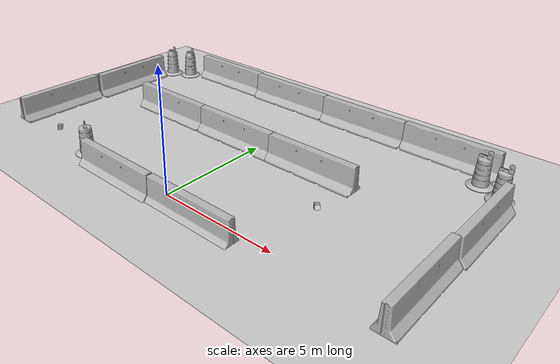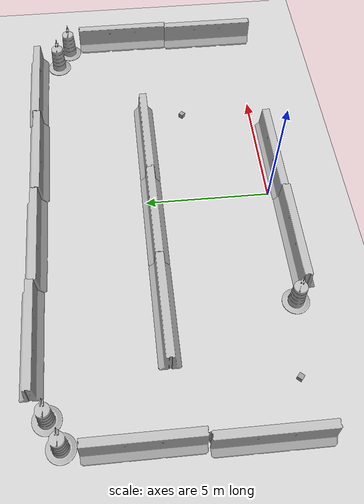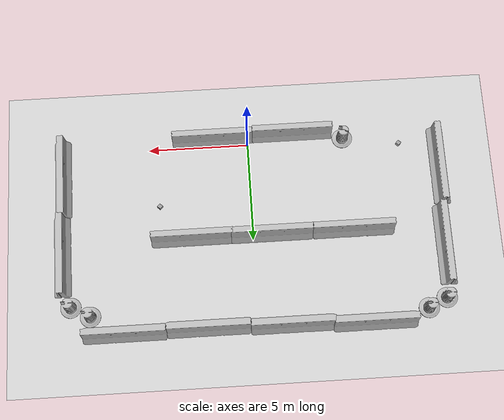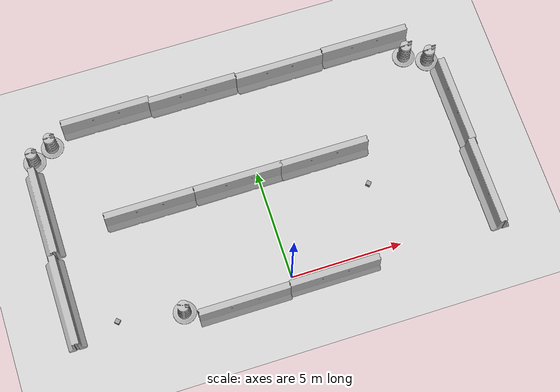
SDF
<sdf version="1.7">
 <world name="default">
  <model name="ground_plane">
   <static>1</static>
   <link name="link">
    <collision name="collision">
     <geometry><plane><normal>0 0 1</normal><size>100 100</size></plane></geometry>
     <surface><friction><ode><mu>100</mu><mu2>50</mu2></ode></friction></surface>
    </collision>
    <visual name="visual">
     <cast_shadows>0</cast_shadows>
     <geometry><plane><normal>0 0 1</normal><size>100 100</size></plane></geometry>
     <material>
      <script><uri>file://media/materials/scripts/gazebo.material</uri><name>Gazebo/Grey</name></script>
     </material>
    </visual>
   </link>
  </model>
  <model name="jersey_barrier">
   <static>1</static>
   <link name="link">
    <visual name="visual">
     <geometry><mesh><uri>model://jersey_barrier/meshes/jersey_barrier.dae</uri></mesh></geometry>
    </visual>
    <collision name="upright">
     <pose>0 0 0.5715 0 -0 0</pose>
     <geometry><box><size>4.06542 0.3063 1.143</size></box></geometry>
    </collision>
    <collision name="base">
     <pose>0 0 0.032258 0 -0 0</pose>
     <geometry><box><size>4.06542 0.8107 0.064516</size></box></geometry>
    </collision>
    <collision name="base2">
     <pose>0 0 0.1 0 -0 0</pose>
     <geometry><box><size>4.06542 0.65 0.1</size></box></geometry>
    </collision>
    <collision name="base3">
     <pose>0 0 0.2 0 -0 0</pose>
     <geometry><box><size>4.06542 0.5 0.1</size></box></geometry>
    </collision>
    <collision name="left-angle">
     <pose>0 -0.224 0.2401 0.9 -0 0</pose>
     <geometry><box><size>4.06542 0.5 0.064516</size></box></geometry>
    </collision>
    <collision name="right-angle">
     <pose>0 0.224 0.2401 -0.9 0 0</pose>
     <geometry><box><size>4.06542 0.5 0.064516</size></box></geometry>
    </collision>
   </link>
   <pose>-5.65677 9.4608 0 0 -0 0</pose>
  </model>
  <model name="jersey_barrier_clone">
   <static>1</static>
   <link name="link">
    <visual name="visual">
     <geometry><mesh><uri>model://jersey_barrier/meshes/jersey_barrier.dae</uri></mesh></geometry>
    </visual>
    <collision name="upright">
     <pose>0 0 0.5715 0 -0 0</pose>
     <geometry><box><size>4.06542 0.3063 1.143</size></box></geometry>
    </collision>
    <collision name="base">
     <pose>0 0 0.032258 0 -0 0</pose>
     <geometry><box><size>4.06542 0.8107 0.064516</size></box></geometry>
    </collision>
    <collision name="base2">
     <pose>0 0 0.1 0 -0 0</pose>
     <geometry><box><size>4.06542 0.65 0.1</size></box></geometry>
    </collision>
    <collision name="base3">
     <pose>0 0 0.2 0 -0 0</pose>
     <geometry><box><size>4.06542 0.5 0.1</size></box></geometry>
    </collision>
    <collision name="left-angle">
     <pose>0 -0.224 0.2401 0.9 -0 0</pose>
     <geometry><box><size>4.06542 0.5 0.064516</size></box></geometry>
    </collision>
    <collision name="right-angle">
     <pose>0 0.224 0.2401 -0.9 0 0</pose>
     <geometry><box><size>4.06542 0.5 0.064516</size></box></geometry>
    </collision>
   </link>
   <pose>-1.65987 9.36075 0 0 -0 0</pose>
  </model>
  <model name="jersey_barrier_clone_0">
   <static>1</static>
   <link name="link">
    <visual name="visual">
     <geometry><mesh><uri>model://jersey_barrier/meshes/jersey_barrier.dae</uri></mesh></geometry>
    </visual>
    <collision name="upright">
     <pose>0 0 0.5715 0 -0 0</pose>
     <geometry><box><size>4.06542 0.3063 1.143</size></box></geometry>
    </collision>
    <collision name="base">
     <pose>0 0 0.032258 0 -0 0</pose>
     <geometry><box><size>4.06542 0.8107 0.064516</size></box></geometry>
    </collision>
    <collision name="base2">
     <pose>0 0 0.1 0 -0 0</pose>
     <geometry><box><size>4.06542 0.65 0.1</size></box></geometry>
    </collision>
    <collision name="base3">
     <pose>0 0 0.2 0 -0 0</pose>
     <geometry><box><size>4.06542 0.5 0.1</size></box></geometry>
    </collision>
    <collision name="left-angle">
     <pose>0 -0.224 0.2401 0.9 -0 0</pose>
     <geometry><box><size>4.06542 0.5 0.064516</size></box></geometry>
    </collision>
    <collision name="right-angle">
     <pose>0 0.224 0.2401 -0.9 0 0</pose>
     <geometry><box><size>4.06542 0.5 0.064516</size></box></geometry>
    </collision>
   </link>
   <pose>2.39773 9.29085 0 0 -0 0</pose>
  </model>
  <model name="jersey_barrier_clone_1">
   <static>1</static>
   <link name="link">
    <visual name="visual">
     <geometry><mesh><uri>model://jersey_barrier/meshes/jersey_barrier.dae</uri></mesh></geometry>
    </visual>
    <collision name="upright">
     <pose>0 0 0.5715 0 -0 0</pose>
     <geometry><box><size>4.06542 0.3063 1.143</size></box></geometry>
    </collision>
    <collision name="base">
     <pose>0 0 0.032258 0 -0 0</pose>
     <geometry><box><size>4.06542 0.8107 0.064516</size></box></geometry>
    </collision>
    <collision name="base2">
     <pose>0 0 0.1 0 -0 0</pose>
     <geometry><box><size>4.06542 0.65 0.1</size></box></geometry>
    </collision>
    <collision name="base3">
     <pose>0 0 0.2 0 -0 0</pose>
     <geometry><box><size>4.06542 0.5 0.1</size></box></geometry>
    </collision>
    <collision name="left-angle">
     <pose>0 -0.224 0.2401 0.9 -0 0</pose>
     <geometry><box><size>4.06542 0.5 0.064516</size></box></geometry>
    </collision>
    <collision name="right-angle">
     <pose>0 0.224 0.2401 -0.9 0 0</pose>
     <geometry><box><size>4.06542 0.5 0.064516</size></box></geometry>
    </collision>
   </link>
   <pose>6.45464 9.33993 0 0 -0 0</pose>
  </model>
  <model name="jersey_barrier_clone_3">
   <static>1</static>
   <link name="link">
    <visual name="visual">
     <geometry><mesh><uri>model://jersey_barrier/meshes/jersey_barrier.dae</uri></mesh></geometry>
    </visual>
    <collision name="upright">
     <pose>0 0 0.5715 0 -0 0</pose>
     <geometry><box><size>4.06542 0.3063 1.143</size></box></geometry>
    </collision>
    <collision name="base">
     <pose>0 0 0.032258 0 -0 0</pose>
     <geometry><box><size>4.06542 0.8107 0.064516</size></box></geometry>
    </collision>
    <collision name="base2">
     <pose>0 0 0.1 0 -0 0</pose>
     <geometry><box><size>4.06542 0.65 0.1</size></box></geometry>
    </collision>
    <collision name="base3">
     <pose>0 0 0.2 0 -0 0</pose>
     <geometry><box><size>4.06542 0.5 0.1</size></box></geometry>
    </collision>
    <collision name="left-angle">
     <pose>0 -0.224 0.2401 0.9 -0 0</pose>
     <geometry><box><size>4.06542 0.5 0.064516</size></box></geometry>
    </collision>
    <collision name="right-angle">
     <pose>0 0.224 0.2401 -0.9 0 0</pose>
     <geometry><box><size>4.06542 0.5 0.064516</size></box></geometry>
    </collision>
   </link>
   <pose>9.44656 5.35522 0 0 0 -1.56865</pose>
  </model>
  <model name="jersey_barrier_clone_3_clone">
   <static>1</static>
   <link name="link">
    <visual name="visual">
     <geometry><mesh><uri>model://jersey_barrier/meshes/jersey_barrier.dae</uri></mesh></geometry>
    </visual>
    <collision name="upright">
     <pose>0 0 0.5715 0 -0 0</pose>
     <geometry><box><size>4.06542 0.3063 1.143</size></box></geometry>
    </collision>
    <collision name="base">
     <pose>0 0 0.032258 0 -0 0</pose>
     <geometry><box><size>4.06542 0.8107 0.064516</size></box></geometry>
    </collision>
    <collision name="base2">
     <pose>0 0 0.1 0 -0 0</pose>
     <geometry><box><size>4.06542 0.65 0.1</size></box></geometry>
    </collision>
    <collision name="base3">
     <pose>0 0 0.2 0 -0 0</pose>
     <geometry><box><size>4.06542 0.5 0.1</size></box></geometry>
    </collision>
    <collision name="left-angle">
     <pose>0 -0.224 0.2401 0.9 -0 0</pose>
     <geometry><box><size>4.06542 0.5 0.064516</size></box></geometry>
    </collision>
    <collision name="right-angle">
     <pose>0 0.224 0.2401 -0.9 0 0</pose>
     <geometry><box><size>4.06542 0.5 0.064516</size></box></geometry>
    </collision>
   </link>
   <pose>9.3727 1.33119 0 0 0 -1.56865</pose>
  </model>
  <model name="jersey_barrier_clone_3_clone_1_clone_1">
   <static>1</static>
   <link name="link">
    <visual name="visual">
     <geometry><mesh><uri>model://jersey_barrier/meshes/jersey_barrier.dae</uri></mesh></geometry>
    </visual>
    <collision name="upright">
     <pose>0 0 0.5715 0 -0 0</pose>
     <geometry><box><size>4.06542 0.3063 1.143</size></box></geometry>
    </collision>
    <collision name="base">
     <pose>0 0 0.032258 0 -0 0</pose>
     <geometry><box><size>4.06542 0.8107 0.064516</size></box></geometry>
    </collision>
    <collision name="base2">
     <pose>0 0 0.1 0 -0 0</pose>
     <geometry><box><size>4.06542 0.65 0.1</size></box></geometry>
    </collision>
    <collision name="base3">
     <pose>0 0 0.2 0 -0 0</pose>
     <geometry><box><size>4.06542 0.5 0.1</size></box></geometry>
    </collision>
    <collision name="left-angle">
     <pose>0 -0.224 0.2401 0.9 -0 0</pose>
     <geometry><box><size>4.06542 0.5 0.064516</size></box></geometry>
    </collision>
    <collision name="right-angle">
     <pose>0 0.224 0.2401 -0.9 0 0</pose>
     <geometry><box><size>4.06542 0.5 0.064516</size></box></geometry>
    </collision>
   </link>
   <pose>-9.58952 1.69745 0 0 0 -1.56865</pose>
  </model>
  <model name="jersey_barrier_clone_3_clone_1_clone_2">
   <static>1</static>
   <link name="link">
    <visual name="visual">
     <geometry><mesh><uri>model://jersey_barrier/meshes/jersey_barrier.dae</uri></mesh></geometry>
    </visual>
    <collision name="upright">
     <pose>0 0 0.5715 0 -0 0</pose>
     <geometry><box><size>4.06542 0.3063 1.143</size></box></geometry>
    </collision>
    <collision name="base">
     <pose>0 0 0.032258 0 -0 0</pose>
     <geometry><box><size>4.06542 0.8107 0.064516</size></box></geometry>
    </collision>
    <collision name="base2">
     <pose>0 0 0.1 0 -0 0</pose>
     <geometry><box><size>4.06542 0.65 0.1</size></box></geometry>
    </collision>
    <collision name="base3">
     <pose>0 0 0.2 0 -0 0</pose>
     <geometry><box><size>4.06542 0.5 0.1</size></box></geometry>
    </collision>
    <collision name="left-angle">
     <pose>0 -0.224 0.2401 0.9 -0 0</pose>
     <geometry><box><size>4.06542 0.5 0.064516</size></box></geometry>
    </collision>
    <collision name="right-angle">
     <pose>0 0.224 0.2401 -0.9 0 0</pose>
     <geometry><box><size>4.06542 0.5 0.064516</size></box></geometry>
    </collision>
   </link>
   <pose>-9.44715 5.83721 0 0 0 -1.56865</pose>
  </model>
  <model name="Construction Barrel">
   <link name="link">
    <inertial>
     <pose>0 0 0.4 0 -0 0</pose>
     <mass>500</mass>
     <inertia><ixx>51.2096</ixx><iyy>51.2096</iyy><izz>25</izz><ixy>0</ixy><ixz>0</ixz><iyz>0</iyz></inertia>
    </inertial>
    <collision name="collision">
     <geometry><mesh><uri>model://construction_barrel/meshes/construction_barrel.dae</uri></mesh></geometry>
    </collision>
    <visual name="visual">
     <geometry><mesh><uri>model://construction_barrel/meshes/construction_barrel.dae</uri></mesh></geometry>
    </visual>
   </link>
   <pose>9.07434 7.91049 -2e-06 4e-06 9e-06 -0.000113</pose>
  </model>
  <model name="Construction Barrel_0">
   <link name="link">
    <inertial>
     <pose>0 0 0.4 0 -0 0</pose>
     <mass>500</mass>
     <inertia><ixx>51.2096</ixx><iyy>51.2096</iyy><izz>25</izz><ixy>0</ixy><ixz>0</ixz><iyz>0</iyz></inertia>
    </inertial>
    <collision name="collision">
     <geometry><mesh><uri>model://construction_barrel/meshes/construction_barrel.dae</uri></mesh></geometry>
    </collision>
    <visual name="visual">
     <geometry><mesh><uri>model://construction_barrel/meshes/construction_barrel.dae</uri></mesh></geometry>
    </visual>
   </link>
   <pose>8.12819 8.41629 -2e-06 -7e-06 -4e-06 -9.7e-05</pose>
  </model>
  <model name="Construction Barrel_1">
   <link name="link">
    <inertial>
     <pose>0 0 0.4 0 -0 0</pose>
     <mass>500</mass>
     <inertia><ixx>51.2096</ixx><iyy>51.2096</iyy><izz>25</izz><ixy>0</ixy><ixz>0</ixz><iyz>0</iyz></inertia>
    </inertial>
    <collision name="collision">
     <geometry><mesh><uri>model://construction_barrel/meshes/construction_barrel.dae</uri></mesh></geometry>
    </collision>
    <visual name="visual">
     <geometry><mesh><uri>model://construction_barrel/meshes/construction_barrel.dae</uri></mesh></geometry>
    </visual>
   </link>
   <pose>-9.27273 8.48384 -2e-06 -7e-06 -4e-06 -9.6e-05</pose>
  </model>
  <model name="Construction Barrel_2">
   <link name="link">
    <inertial>
     <pose>0 0 0.4 0 -0 0</pose>
     <mass>500</mass>
     <inertia><ixx>51.2096</ixx><iyy>51.2096</iyy><izz>25</izz><ixy>0</ixy><ixz>0</ixz><iyz>0</iyz></inertia>
    </inertial>
    <collision name="collision">
     <geometry><mesh><uri>model://construction_barrel/meshes/construction_barrel.dae</uri></mesh></geometry>
    </collision>
    <visual name="visual">
     <geometry><mesh><uri>model://construction_barrel/meshes/construction_barrel.dae</uri></mesh></geometry>
    </visual>
   </link>
   <pose>-8.3437 8.93846 -1e-06 1e-06 -9e-06 -8.4e-05</pose>
  </model>
  <model name="jersey_barrier_0">
   <static>1</static>
   <link name="link">
    <visual name="visual">
     <geometry><mesh><uri>model://jersey_barrier/meshes/jersey_barrier.dae</uri></mesh></geometry>
    </visual>
    <collision name="upright">
     <pose>0 0 0.5715 0 -0 0</pose>
     <geometry><box><size>4.06542 0.3063 1.143</size></box></geometry>
    </collision>
    <collision name="base">
     <pose>0 0 0.032258 0 -0 0</pose>
     <geometry><box><size>4.06542 0.8107 0.064516</size></box></geometry>
    </collision>
    <collision name="base2">
     <pose>0 0 0.1 0 -0 0</pose>
     <geometry><box><size>4.06542 0.65 0.1</size></box></geometry>
    </collision>
    <collision name="base3">
     <pose>0 0 0.2 0 -0 0</pose>
     <geometry><box><size>4.06542 0.5 0.1</size></box></geometry>
    </collision>
    <collision name="left-angle">
     <pose>0 -0.224 0.2401 0.9 -0 0</pose>
     <geometry><box><size>4.06542 0.5 0.064516</size></box></geometry>
    </collision>
    <collision name="right-angle">
     <pose>0 0.224 0.2401 -0.9 0 0</pose>
     <geometry><box><size>4.06542 0.5 0.064516</size></box></geometry>
    </collision>
   </link>
   <pose>-4.97429 4.73074 0 0 -0 0</pose>
  </model>
  <model name="jersey_barrier_0_clone">
   <static>1</static>
   <link name="link">
    <visual name="visual">
     <geometry><mesh><uri>model://jersey_barrier/meshes/jersey_barrier.dae</uri></mesh></geometry>
    </visual>
    <collision name="upright">
     <pose>0 0 0.5715 0 -0 0</pose>
     <geometry><box><size>4.06542 0.3063 1.143</size></box></geometry>
    </collision>
    <collision name="base">
     <pose>0 0 0.032258 0 -0 0</pose>
     <geometry><box><size>4.06542 0.8107 0.064516</size></box></geometry>
    </collision>
    <collision name="base2">
     <pose>0 0 0.1 0 -0 0</pose>
     <geometry><box><size>4.06542 0.65 0.1</size></box></geometry>
    </collision>
    <collision name="base3">
     <pose>0 0 0.2 0 -0 0</pose>
     <geometry><box><size>4.06542 0.5 0.1</size></box></geometry>
    </collision>
    <collision name="left-angle">
     <pose>0 -0.224 0.2401 0.9 -0 0</pose>
     <geometry><box><size>4.06542 0.5 0.064516</size></box></geometry>
    </collision>
    <collision name="right-angle">
     <pose>0 0.224 0.2401 -0.9 0 0</pose>
     <geometry><box><size>4.06542 0.5 0.064516</size></box></geometry>
    </collision>
   </link>
   <pose>-0.93635 4.73131 0 0 -0 0</pose>
  </model>
  <model name="jersey_barrier_0_clone_0">
   <static>1</static>
   <link name="link">
    <visual name="visual">
     <geometry><mesh><uri>model://jersey_barrier/meshes/jersey_barrier.dae</uri></mesh></geometry>
    </visual>
    <collision name="upright">
     <pose>0 0 0.5715 0 -0 0</pose>
     <geometry><box><size>4.06542 0.3063 1.143</size></box></geometry>
    </collision>
    <collision name="base">
     <pose>0 0 0.032258 0 -0 0</pose>
     <geometry><box><size>4.06542 0.8107 0.064516</size></box></geometry>
    </collision>
    <collision name="base2">
     <pose>0 0 0.1 0 -0 0</pose>
     <geometry><box><size>4.06542 0.65 0.1</size></box></geometry>
    </collision>
    <collision name="base3">
     <pose>0 0 0.2 0 -0 0</pose>
     <geometry><box><size>4.06542 0.5 0.1</size></box></geometry>
    </collision>
    <collision name="left-angle">
     <pose>0 -0.224 0.2401 0.9 -0 0</pose>
     <geometry><box><size>4.06542 0.5 0.064516</size></box></geometry>
    </collision>
    <collision name="right-angle">
     <pose>0 0.224 0.2401 -0.9 0 0</pose>
     <geometry><box><size>4.06542 0.5 0.064516</size></box></geometry>
    </collision>
   </link>
   <pose>2.99134 4.7208 0 0 -0 0</pose>
  </model>
  <model name="jersey_barrier_0_clone_1">
   <static>1</static>
   <link name="link">
    <visual name="visual">
     <geometry><mesh><uri>model://jersey_barrier/meshes/jersey_barrier.dae</uri></mesh></geometry>
    </visual>
    <collision name="upright">
     <pose>0 0 0.5715 0 -0 0</pose>
     <geometry><box><size>4.06542 0.3063 1.143</size></box></geometry>
    </collision>
    <collision name="base">
     <pose>0 0 0.032258 0 -0 0</pose>
     <geometry><box><size>4.06542 0.8107 0.064516</size></box></geometry>
    </collision>
    <collision name="base2">
     <pose>0 0 0.1 0 -0 0</pose>
     <geometry><box><size>4.06542 0.65 0.1</size></box></geometry>
    </collision>
    <collision name="base3">
     <pose>0 0 0.2 0 -0 0</pose>
     <geometry><box><size>4.06542 0.5 0.1</size></box></geometry>
    </collision>
    <collision name="left-angle">
     <pose>0 -0.224 0.2401 0.9 -0 0</pose>
     <geometry><box><size>4.06542 0.5 0.064516</size></box></geometry>
    </collision>
    <collision name="right-angle">
     <pose>0 0.224 0.2401 -0.9 0 0</pose>
     <geometry><box><size>4.06542 0.5 0.064516</size></box></geometry>
    </collision>
   </link>
   <pose>-2.28888 -0.547269 -0.117848 0 -0 0</pose>
  </model>
  <model name="jersey_barrier_0_clone_1_clone">
   <static>1</static>
   <link name="link">
    <visual name="visual">
     <geometry><mesh><uri>model://jersey_barrier/meshes/jersey_barrier.dae</uri></mesh></geometry>
    </visual>
    <collision name="upright">
     <pose>0 0 0.5715 0 -0 0</pose>
     <geometry><box><size>4.06542 0.3063 1.143</size></box></geometry>
    </collision>
    <collision name="base">
     <pose>0 0 0.032258 0 -0 0</pose>
     <geometry><box><size>4.06542 0.8107 0.064516</size></box></geometry>
    </collision>
    <collision name="base2">
     <pose>0 0 0.1 0 -0 0</pose>
     <geometry><box><size>4.06542 0.65 0.1</size></box></geometry>
    </collision>
    <collision name="base3">
     <pose>0 0 0.2 0 -0 0</pose>
     <geometry><box><size>4.06542 0.5 0.1</size></box></geometry>
    </collision>
    <collision name="left-angle">
     <pose>0 -0.224 0.2401 0.9 -0 0</pose>
     <geometry><box><size>4.06542 0.5 0.064516</size></box></geometry>
    </collision>
    <collision name="right-angle">
     <pose>0 0.224 0.2401 -0.9 0 0</pose>
     <geometry><box><size>4.06542 0.5 0.064516</size></box></geometry>
    </collision>
   </link>
   <pose>1.76095 -0.499977 -0.161716 0 -0 0</pose>
  </model>
  <model name="Construction Barrel_6">
   <link name="link">
    <inertial>
     <pose>0 0 0.4 0 -0 0</pose>
     <mass>500</mass>
     <inertia><ixx>51.2096</ixx><iyy>51.2096</iyy><izz>25</izz><ixy>0</ixy><ixz>0</ixz><iyz>0</iyz></inertia>
    </inertial>
    <collision name="collision">
     <geometry><mesh><uri>model://construction_barrel/meshes/construction_barrel.dae</uri></mesh></geometry>
    </collision>
    <visual name="visual">
     <geometry><mesh><uri>model://construction_barrel/meshes/construction_barrel.dae</uri></mesh></geometry>
    </visual>
   </link>
   <pose>-4.84365 -0.104882 -0 0 0 -0.482812</pose>
  </model>
  <model name="marker11_box">
   <link name="marker">
    <inertial>
     <mass>0.1</mass>
     <inertia><ixx>0</ixx><ixy>0</ixy><ixz>0</ixz><iyy>0</iyy><iyz>0</iyz><izz>0</izz></inertia>
    </inertial>
    <self_collide>1</self_collide>
    <pose>-0.76428 -0.101106 0.120004 -0.015494 1.56996 -0.015507</pose>
    <visual name="visual">
     <geometry><box><size>0.2 0.2 0.001</size></box></geometry>
     <material>
      <script>
       <uri>model://marker11/material/scripts</uri>
       <uri>model://marker11/material/textures</uri>
       <name>Aruco/marker11</name>
      </script>
      <shader type="pixel"><normal_map>__default__</normal_map></shader>
      <emissive>0 0 0 1</emissive>
      <ambient>1 1 1 1</ambient>
      <diffuse>1 1 1 1</diffuse>
      <specular>0 0 0 1</specular>
     </material>
    </visual>
    <collision name="collision">
     <geometry><box><size>0.2 0.2 0.02</size></box></geometry>
     <surface>
      <friction>
       <ode><mu>1</mu><mu2>1</mu2><fdir1>0 0 0</fdir1><slip1>0</slip1><slip2>0</slip2></ode>
       <torsional>
        <coefficient>1</coefficient>
        <patch_radius>0</patch_radius>
        <surface_radius>0</surface_radius>
        <use_patch_radius>1</use_patch_radius>
        <ode><slip>0</slip></ode>
       </torsional>
      </friction>
      <bounce><restitution_coefficient>0</restitution_coefficient><threshold>1e+06</threshold></bounce>
      <contact>
       <collide_without_contact>0</collide_without_contact>
       <collide_without_contact_bitmask>1</collide_without_contact_bitmask>
       <collide_bitmask>1</collide_bitmask>
       <ode>
        <soft_cfm>0</soft_cfm>
        <soft_erp>0.2</soft_erp>
        <kp>1e+13</kp>
        <kd>1</kd>
        <max_vel>0.01</max_vel>
        <min_depth>0</min_depth>
       </ode>
       <bullet>
        <split_impulse>1</split_impulse>
        <split_impulse_penetration_threshold>-0.01</split_impulse_penetration_threshold>
        <soft_cfm>0</soft_cfm>
        <soft_erp>0.2</soft_erp>
        <kp>1e+13</kp>
        <kd>1</kd>
       </bullet>
      </contact>
     </surface>
    </collision>
   </link>
   <link name="link_1">
    <inertial>
     <mass>1</mass>
     <inertia>
      <ixx>0.166667</ixx>
      <ixy>0</ixy>
      <ixz>0</ixz>
      <iyy>0.166667</iyy>
      <iyz>0</iyz>
      <izz>0.166667</izz>
     </inertia>
    </inertial>
    <pose>-0.86428 -0.101106 0.12 -1.3e-05 -4.2e-05 0</pose>
    <visual name="visual">
     <geometry><box><size>0.2 0.2 0.2</size></box></geometry>
     <material>
      <lighting>1</lighting>
      <script><uri>file://media/materials/scripts/gazebo.material</uri><name>Gazebo/Grey</name></script>
      <shader type="pixel"><normal_map>__default__</normal_map></shader>
      <emissive>0 0 0 1</emissive>
      <ambient>0.3 0.3 0.3 1</ambient>
      <diffuse>0.7 0.7 0.7 1</diffuse>
      <specular>0.01 0.01 0.01 1</specular>
     </material>
    </visual>
    <collision name="collision">
     <geometry><box><size>0.2 0.2 0.2</size></box></geometry>
     <surface>
      <friction>
       <ode><mu>1</mu><mu2>1</mu2><fdir1>0 0 0</fdir1><slip1>0</slip1><slip2>0</slip2></ode>
       <torsional>
        <coefficient>1</coefficient>
        <patch_radius>0</patch_radius>
        <surface_radius>0</surface_radius>
        <use_patch_radius>1</use_patch_radius>
        <ode><slip>0</slip></ode>
       </torsional>
      </friction>
      <bounce><restitution_coefficient>0</restitution_coefficient><threshold>1e+06</threshold></bounce>
      <contact>
       <collide_without_contact>0</collide_without_contact>
       <collide_without_contact_bitmask>1</collide_without_contact_bitmask>
       <collide_bitmask>1</collide_bitmask>
       <ode>
        <soft_cfm>0</soft_cfm>
        <soft_erp>0.2</soft_erp>
        <kp>1e+13</kp>
        <kd>1</kd>
        <max_vel>0.01</max_vel>
        <min_depth>0</min_depth>
       </ode>
       <bullet>
        <split_impulse>1</split_impulse>
        <split_impulse_penetration_threshold>-0.01</split_impulse_penetration_threshold>
        <soft_cfm>0</soft_cfm>
        <soft_erp>0.2</soft_erp>
        <kp>1e+13</kp>
        <kd>1</kd>
       </bullet>
      </contact>
     </surface>
    </collision>
   </link>
   <joint name="link_1_JOINT_3" type="fixed">
    <parent>link_1</parent>
    <child>marker</child>
    <physics>
     <ode><limit><cfm>0</cfm><erp>0.2</erp></limit><suspension><cfm>0</cfm><erp>0.2</erp></suspension></ode>
    </physics>
   </joint>
   <static>0</static>
   <pose>5.24654 2.49987 -0.020007 1.9e-05 1.8e-05 -0.762282</pose>
  </model>
  <model name="marker15_box">
   <link name="marker">
    <inertial>
     <mass>0.1</mass>
     <inertia><ixx>0</ixx><ixy>0</ixy><ixz>0</ixz><iyy>0</iyy><iyz>0</iyz><izz>0</izz></inertia>
    </inertial>
    <self_collide>1</self_collide>
    <pose>-0.76428 -0.101106 0.120004 -0.015494 1.56996 -0.015507</pose>
    <visual name="visual">
     <geometry><box><size>0.2 0.2 0.001</size></box></geometry>
     <material>
      <script>
       <uri>model://marker15/material/scripts</uri>
       <uri>model://marker15/material/textures</uri>
       <name>Aruco/marker15</name>
      </script>
      <shader type="pixel"><normal_map>__default__</normal_map></shader>
      <emissive>0 0 0 1</emissive>
      <ambient>1 1 1 1</ambient>
      <diffuse>1 1 1 1</diffuse>
      <specular>0 0 0 1</specular>
     </material>
    </visual>
    <collision name="collision">
     <geometry><box><size>0.2 0.2 0.02</size></box></geometry>
     <surface>
      <friction>
       <ode><mu>1</mu><mu2>1</mu2><fdir1>0 0 0</fdir1><slip1>0</slip1><slip2>0</slip2></ode>
       <torsional>
        <coefficient>1</coefficient>
        <patch_radius>0</patch_radius>
        <surface_radius>0</surface_radius>
        <use_patch_radius>1</use_patch_radius>
        <ode><slip>0</slip></ode>
       </torsional>
      </friction>
      <bounce><restitution_coefficient>0</restitution_coefficient><threshold>1e+06</threshold></bounce>
      <contact>
       <collide_without_contact>0</collide_without_contact>
       <collide_without_contact_bitmask>1</collide_without_contact_bitmask>
       <collide_bitmask>1</collide_bitmask>
       <ode>
        <soft_cfm>0</soft_cfm>
        <soft_erp>0.2</soft_erp>
        <kp>1e+13</kp>
        <kd>1</kd>
        <max_vel>0.01</max_vel>
        <min_depth>0</min_depth>
       </ode>
       <bullet>
        <split_impulse>1</split_impulse>
        <split_impulse_penetration_threshold>-0.01</split_impulse_penetration_threshold>
        <soft_cfm>0</soft_cfm>
        <soft_erp>0.2</soft_erp>
        <kp>1e+13</kp>
        <kd>1</kd>
       </bullet>
      </contact>
     </surface>
    </collision>
   </link>
   <link name="link_1">
    <inertial>
     <mass>1</mass>
     <inertia>
      <ixx>0.166667</ixx>
      <ixy>0</ixy>
      <ixz>0</ixz>
      <iyy>0.166667</iyy>
      <iyz>0</iyz>
      <izz>0.166667</izz>
     </inertia>
    </inertial>
    <pose>-0.86428 -0.101106 0.12 -1.3e-05 -4.2e-05 0</pose>
    <visual name="visual">
     <geometry><box><size>0.2 0.2 0.2</size></box></geometry>
     <material>
      <lighting>1</lighting>
      <script><uri>file://media/materials/scripts/gazebo.material</uri><name>Gazebo/Grey</name></script>
      <shader type="pixel"><normal_map>__default__</normal_map></shader>
      <emissive>0 0 0 1</emissive>
      <ambient>0.3 0.3 0.3 1</ambient>
      <diffuse>0.7 0.7 0.7 1</diffuse>
      <specular>0.01 0.01 0.01 1</specular>
     </material>
    </visual>
    <collision name="collision">
     <geometry><box><size>0.2 0.2 0.2</size></box></geometry>
     <surface>
      <friction>
       <ode><mu>1</mu><mu2>1</mu2><fdir1>0 0 0</fdir1><slip1>0</slip1><slip2>0</slip2></ode>
       <torsional>
        <coefficient>1</coefficient>
        <patch_radius>0</patch_radius>
        <surface_radius>0</surface_radius>
        <use_patch_radius>1</use_patch_radius>
        <ode><slip>0</slip></ode>
       </torsional>
      </friction>
      <bounce><restitution_coefficient>0</restitution_coefficient><threshold>1e+06</threshold></bounce>
      <contact>
       <collide_without_contact>0</collide_without_contact>
       <collide_without_contact_bitmask>1</collide_without_contact_bitmask>
       <collide_bitmask>1</collide_bitmask>
       <ode>
        <soft_cfm>0</soft_cfm>
        <soft_erp>0.2</soft_erp>
        <kp>1e+13</kp>
        <kd>1</kd>
        <max_vel>0.01</max_vel>
        <min_depth>0</min_depth>
       </ode>
       <bullet>
        <split_impulse>1</split_impulse>
        <split_impulse_penetration_threshold>-0.01</split_impulse_penetration_threshold>
        <soft_cfm>0</soft_cfm>
        <soft_erp>0.2</soft_erp>
        <kp>1e+13</kp>
        <kd>1</kd>
       </bullet>
      </contact>
     </surface>
    </collision>
   </link>
   <joint name="link_1_JOINT_3" type="fixed">
    <parent>link_1</parent>
    <child>marker</child>
    <physics>
     <ode><limit><cfm>0</cfm><erp>0.2</erp></limit><suspension><cfm>0</cfm><erp>0.2</erp></suspension></ode>
    </physics>
   </joint>
   <static>0</static>
   <pose>-7.17924 1.06635 -0.020008 3e-06 1.8e-05 0.838432</pose>
  </model>
 </world>
</sdf>
